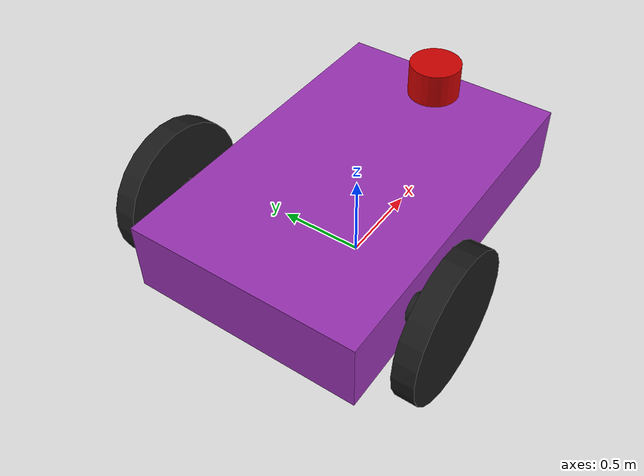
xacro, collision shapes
<?xml version="1.0"?>
<robot name="robot" xmlns:xacro="http://www.ros.org/wiki/xacro">
    <xacro:include filename="$(find robot_description)/urdf/robot.gazebo"/>
    <xacro:property name="chassis_mass" value="10" />
    <link name="base_link">
    </link>
    <link name="link_chassis">
        <inertial>
            <mass value="${chassis_mass}"/>
            <origin xyz="0 0 0.3" rpy="0 0 0"/>
            <inertia ixx="1.5417" ixy="0" ixz="0" iyy="3.467" iyz="0" izz="4.742"/>
        </inertial>
        <collision>
            <geometry>
                <box size="2 1.3 0.4"/>
            </geometry>
        </collision>
        <visual>
            <geometry>
                <mesh filename="package://robot_description/meshes/chassis.stl"/>
            </geometry>
            <material name="purple"/>
        </visual>
    </link>
    <joint name="base_chassis_joint" type="fixed">
        <origin xyz="0 0 0.42" rpy="0 0 0"/>
        <parent link="base_link"/>
        <child link="link_chassis"/>
    </joint>

    <link name="link_left_wheel">
        <inertial>
            <mass value="1" />
            <origin xyz="0 0 0" rpy="0 0 0" />
            <inertia ixx="0.002526666666667" ixy="0" ixz="0" iyy="0.002526666666667" iyz="0" izz="0.005"/>
        </inertial>

        <!-- Tires -->
        <collision>
            <origin rpy="${pi/2} 0 0" xyz="0 0.18 0" />
            <geometry>
                <cylinder length="0.12" radius="0.4"/>
            </geometry>
        </collision>
        <visual>
            <origin rpy="${pi/2} 0 0" xyz="0 0.18 0" />
            <geometry>
                <mesh filename="package://robot_description/meshes/wheel.stl"/>
            </geometry>
            <material name="Black">
                <color rgba="0.1 0.1 0.1 1" />
            </material>
        </visual>

        <!-- Axle -->
        <collision>
            <origin rpy="${pi/2} 0 0" xyz="0 0.06 0" />
            <geometry>
                <cylinder length="0.12" radius="0.08"/>
            </geometry>
        </collision>
        <visual>
            <origin rpy="${pi/2} 0 0" xyz="0 0.06 0" />
            <geometry>
                <cylinder length="0.12" radius="0.08"/>
            </geometry>
            <material name="Grey">
                <color rgba="0.6 0.6 0.6 1" />
            </material>
        </visual>

        <!-- Hubcap -->
        <visual>
            <origin rpy="${pi/2} 0 0" xyz="0 0.25 0" />
            <geometry>
                <box size="0.02 0.5 0.02" />
            </geometry>
            <material name="Grey">
                <color rgba="0.6 0.6 0.6 1" />
            </material>
        </visual>
    </link>

    <joint name="joint_chassis_left_wheel" type="continuous">
        <origin xyz="-0.5 0.65 0" rpy="0 0 0"/>
        <parent link="link_chassis"/>
        <child link="link_left_wheel"/>
        <limit effort="10000" velocity="1000"/>
        <joint_properties damping="1.0" friction="1.0"/>
        <axis xyz="0 1 0" rpy="0 0 0"/>
    </joint>
    <link name="link_right_wheel">
        <inertial>
            <mass value="1" />
            <origin xyz="0 0 0" rpy="0 0 0" />
            <inertia ixx="0.002526666666667" ixy="0" ixz="0" iyy="0.002526666666667" iyz="0" izz="0.005"/>
        </inertial>

        <!-- Tires -->
        <collision>
            <origin rpy="${pi/2} 0 0" xyz="0 -0.18 0" />
            <geometry>
                <cylinder length="0.12" radius="0.4"/>
            </geometry>
        </collision>
        <visual>
            <origin rpy="${pi/2} 0 0" xyz="0 -0.18 0" />
            <geometry>
                <mesh filename="package://robot_description/meshes/wheel.stl"/>
            </geometry>
            <material name="Black">
                <color rgba="0.1 0.1 0.1 1" />
            </material>
        </visual>

        <!-- Axle -->
        <collision>
            <origin rpy="${pi/2} 0 0" xyz="0 -0.06 0" />
            <geometry>
                <cylinder length="0.12" radius="0.08"/>
            </geometry>
        </collision>
        <visual>
            <origin rpy="${pi/2} 0 0" xyz="0 -0.06 0" />
            <geometry>
                <cylinder length="0.12" radius="0.08"/>
            </geometry>
            <material name="Grey">
                <color rgba="0.6 0.6 0.6 1" />
            </material>
        </visual>

        <!-- Hubcap -->
        <visual>
            <origin rpy="${pi/2} 0 0" xyz="0 -0.25 0" />
            <geometry>
                <box size="0.02 0.5 0.02" />
            </geometry>
            <material name="Grey">
                <color rgba="0.6 0.6 0.6 1" />
            </material>
        </visual>
    </link>

    <joint name="joint_chassis_right_wheel" type="continuous">
        <parent link="link_chassis"/>
        <child link="link_right_wheel"/>
        <origin xyz="-0.5 -0.65 0" rpy="0 0 0"/>
        <effort limit="10000" velocity="1000"/>
        <joint_properties damping="1.0" friction="1.0"/>
        <axis xyz="0 1 0" rpy="0 0 0"/>
    </joint>
    <link name="link_caster_wheel">
        <inertial>
            <mass value="1" />
            <origin xyz="0 0 0" rpy="0 0 0" />
            <inertia ixx="0.002526666666667" ixy="0" ixz="0" iyy="0.002526666666667" iyz="0" izz="0.005"/>
        </inertial>
        <collision>
            <origin rpy="0 0 0" xyz="0 0 -0.03" />
            <geometry>
                <sphere radius="0.2" />
            </geometry>
        </collision>
        <visual>
            <origin rpy="0 0 0" xyz="0 0 -0.03" />
            <geometry>
                <sphere radius="0.2" />
            </geometry>
            <material name="DarkBlue">
                <color rgba="0.2 0.2 0.4 1" />
            </material>
        </visual>
        <collision>
            <origin rpy="0 0 0" xyz="0 0 -0.15" />
            <geometry>
                <sphere radius="0.10" />
            </geometry>
        </collision>
        <visual>
            <origin rpy="0 0 0" xyz="0 0 -0.15" />
            <geometry>
                <sphere radius="0.10" />
            </geometry>
            <material name="Grey">
                <color rgba="0.6 0.6 0.6 1" />
            </material>
        </visual>
    </link>
    <joint name="caster_wheel_chassis_joint" type="fixed">
        <origin xyz="0.8 0 -0.15" rpy="0 0 0"/>
        <parent link="link_chassis"/>
        <child link="link_caster_wheel"/>
        <joint_properties friction="0.0"/>
    </joint>
<!-- Differential Drive Plugin -->

<!--laser_scan-->
    <joint name="joint_laser_scan" type="fixed">
        <parent link="link_chassis"/>
        <child link="link_laser_scan"/>
        <origin rpy="0 0 0" xyz="0.8 0 0.3"/>
        <joint_properties damping="1.0" friction="1.0"/>
    </joint>
    <link name="link_laser_scan">
        <inertial>
            <origin xyz="0 0 0" rpy="0 0 0"/>
            <mass value="0.5"/>
            <inertia ixx="0.000252666666667" ixy="0" ixz="0" iyy="0.000252666666667" iyz="0" izz="0.0005"/>
        </inertial>
        <visual>
            <origin xyz="0 0 0" rpy="0 0 0"/>
            <geometry>
                <cylinder radius="0.15" length="0.20"/>
            </geometry>
            <material name="Red">
                <color rgba="0.8 0 0 1"/>
            </material>
        </visual>
        <collision>
            <origin xyz="0 0 0" rpy="0 0 0"/>
            <geometry>
                <cylinder radius="0.15" length="0.20"/>
            </geometry>
        </collision>
    </link>
</robot>
